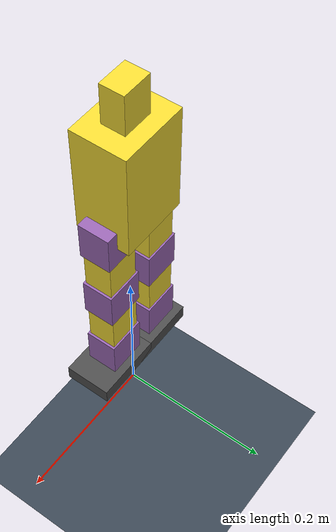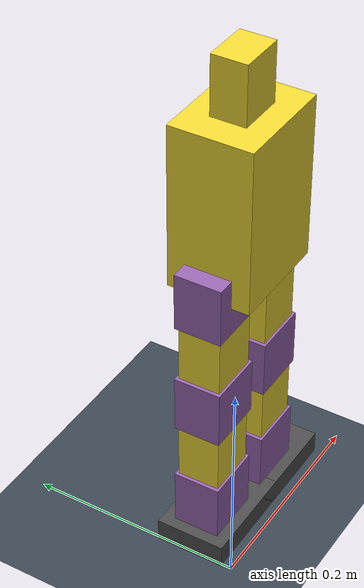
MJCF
<mujoco model="beewalker">
    <compiler angle="degree" coordinate="local" inertiafromgeom="true"/>

    <option timestep="0.002" iterations="10" solver="Newton" integrator="RK4"/>

    <default>
        <joint limited="true" damping="1.0" armature="0.02"/>
        <geom contype="1" conaffinity="1" condim="3" friction="1.2 0.8 0.5"
              density="800" margin="0.001"/>
        <motor ctrllimited="true" ctrlrange="-1 1"/>
    </default>

    <asset>
        <texture type="skybox" builtin="gradient" rgb1="0.4 0.5 0.6" rgb2="0.1 0.1 0.15" width="512" height="512"/>
        <texture name="texplane" type="2d" builtin="checker" rgb1="0.3 0.35 0.4" rgb2="0.15 0.2 0.25"
                 width="512" height="512"/>
        <material name="MatPlane" texture="texplane" texrepeat="20 20" reflectance="0.3"/>
        <material name="MatBody" rgba="0.95 0.85 0.2 1"/>  <!-- Yellow body -->
        <material name="MatServo" rgba="0.6 0.4 0.7 1"/>   <!-- Purple servo mounts -->
        <material name="MatFoot" rgba="0.3 0.3 0.3 1"/>    <!-- Dark feet -->
    </asset>

    <worldbody>
        <!-- Lighting -->
        <light name="spotlight" mode="targetbodycom" target="torso" pos="0 -2 2" diffuse="0.9 0.9 0.9"/>
        <light name="fill" pos="2 2 3" diffuse="0.4 0.4 0.4"/>

        <!-- Ground plane -->
        <geom name="floor" type="plane" size="20 20 0.1" material="MatPlane" conaffinity="1" condim="3"/>

        <!-- Robot body -->
        <body name="torso" pos="0 0 0.40">
            <camera name="track" mode="trackcom" pos="0 -0.8 0.3" xyaxes="1 0 0 0 0.3 1"/>
            <freejoint name="root"/>

            <!-- Main torso - tall electronics box -->
            <geom name="torso_box" type="box" size="0.045 0.035 0.07" pos="0 0 0" material="MatBody"/>

            <!-- Head/spike decoration -->
            <geom name="head_spike" type="box" size="0.02 0.015 0.025" pos="0 0 0.095" material="MatBody"/>

            <!-- IMU sensor site -->
            <site name="imu_site" pos="0 0 0" size="0.005"/>

            <!-- ========== LEFT LEG ========== -->
            <body name="left_hip_block" pos="0.035 0 -0.07">
                <!-- Hip servo (servo 0) - rotates the upper leg -->
                <joint name="left_hip" type="hinge" axis="0 1 0" range="-45 45" ref="0"/>
                <geom name="left_hip_servo" type="box" size="0.025 0.02 0.025" pos="0 0 0" material="MatServo"/>

                <body name="left_upper_leg" pos="0 0 -0.05">
                    <!-- Upper leg segment -->
                    <geom name="left_upper_block" type="box" size="0.022 0.018 0.025" pos="0 0 0" material="MatBody"/>

                    <body name="left_knee_block" pos="0 0 -0.05">
                        <!-- Knee servo (servo 1) -->
                        <joint name="left_knee" type="hinge" axis="0 1 0" range="-60 60" ref="0"/>
                        <geom name="left_knee_servo" type="box" size="0.025 0.02 0.025" pos="0 0 0" material="MatServo"/>

                        <body name="left_lower_leg" pos="0 0 -0.05">
                            <!-- Lower leg segment -->
                            <geom name="left_lower_block" type="box" size="0.022 0.018 0.025" pos="0 0 0" material="MatBody"/>

                            <body name="left_ankle_block" pos="0 0 -0.05">
                                <!-- Ankle servo (servo 2) -->
                                <joint name="left_ankle" type="hinge" axis="0 1 0" range="-30 30" ref="0"/>
                                <geom name="left_ankle_servo" type="box" size="0.025 0.02 0.025" pos="0 0 0" material="MatServo"/>

                                <body name="left_foot" pos="0 0 -0.035">
                                    <!-- Foot -->
                                    <geom name="left_foot_geom" type="box" size="0.045 0.03 0.01" pos="0.01 0 0" material="MatFoot"/>
                                </body>
                            </body>
                        </body>
                    </body>
                </body>
            </body>

            <!-- ========== RIGHT LEG ========== -->
            <body name="right_hip_block" pos="-0.035 0 -0.07">
                <!-- Hip servo (servo 4) - rotates the upper leg -->
                <joint name="right_hip" type="hinge" axis="0 1 0" range="-45 45" ref="0"/>
                <geom name="right_hip_servo" type="box" size="0.025 0.02 0.025" pos="0 0 0" material="MatServo"/>

                <body name="right_upper_leg" pos="0 0 -0.05">
                    <!-- Upper leg segment -->
                    <geom name="right_upper_block" type="box" size="0.022 0.018 0.025" pos="0 0 0" material="MatBody"/>

                    <body name="right_knee_block" pos="0 0 -0.05">
                        <!-- Knee servo (servo 5) -->
                        <joint name="right_knee" type="hinge" axis="0 1 0" range="-60 60" ref="0"/>
                        <geom name="right_knee_servo" type="box" size="0.025 0.02 0.025" pos="0 0 0" material="MatServo"/>

                        <body name="right_lower_leg" pos="0 0 -0.05">
                            <!-- Lower leg segment -->
                            <geom name="right_lower_block" type="box" size="0.022 0.018 0.025" pos="0 0 0" material="MatBody"/>

                            <body name="right_ankle_block" pos="0 0 -0.05">
                                <!-- Ankle servo (servo 6) -->
                                <joint name="right_ankle" type="hinge" axis="0 1 0" range="-30 30" ref="0"/>
                                <geom name="right_ankle_servo" type="box" size="0.025 0.02 0.025" pos="0 0 0" material="MatServo"/>

                                <body name="right_foot" pos="0 0 -0.035">
                                    <!-- Foot -->
                                    <geom name="right_foot_geom" type="box" size="0.045 0.03 0.01" pos="0.01 0 0" material="MatFoot"/>
                                </body>
                            </body>
                        </body>
                    </body>
                </body>
            </body>
        </body>
    </worldbody>

    <actuator>
        <!-- Servo motors - position controlled like real MG996R servos -->
        <!-- Left leg: PCA9685 channels 0, 1, 2 -->
        <position name="servo_left_hip" joint="left_hip" kp="25" ctrlrange="-45 45"/>
        <position name="servo_left_knee" joint="left_knee" kp="25" ctrlrange="-60 60"/>
        <position name="servo_left_ankle" joint="left_ankle" kp="20" ctrlrange="-30 30"/>

        <!-- Right leg: PCA9685 channels 4, 5, 6 -->
        <position name="servo_right_hip" joint="right_hip" kp="25" ctrlrange="-45 45"/>
        <position name="servo_right_knee" joint="right_knee" kp="25" ctrlrange="-60 60"/>
        <position name="servo_right_ankle" joint="right_ankle" kp="20" ctrlrange="-30 30"/>
    </actuator>

    <sensor>
        <!-- IMU sensors -->
        <accelerometer name="accel" site="imu_site"/>
        <gyro name="gyro" site="imu_site"/>

        <!-- Joint position sensors -->
        <jointpos name="left_hip_pos" joint="left_hip"/>
        <jointpos name="left_knee_pos" joint="left_knee"/>
        <jointpos name="left_ankle_pos" joint="left_ankle"/>
        <jointpos name="right_hip_pos" joint="right_hip"/>
        <jointpos name="right_knee_pos" joint="right_knee"/>
        <jointpos name="right_ankle_pos" joint="right_ankle"/>

        <!-- Joint velocity sensors -->
        <jointvel name="left_hip_vel" joint="left_hip"/>
        <jointvel name="left_knee_vel" joint="left_knee"/>
        <jointvel name="left_ankle_vel" joint="left_ankle"/>
        <jointvel name="right_hip_vel" joint="right_hip"/>
        <jointvel name="right_knee_vel" joint="right_knee"/>
        <jointvel name="right_ankle_vel" joint="right_ankle"/>

        <!-- Torso state -->
        <framepos name="torso_pos" objtype="body" objname="torso"/>
        <framequat name="torso_quat" objtype="body" objname="torso"/>
        <framelinvel name="torso_vel" objtype="body" objname="torso"/>
    </sensor>
</mujoco>
